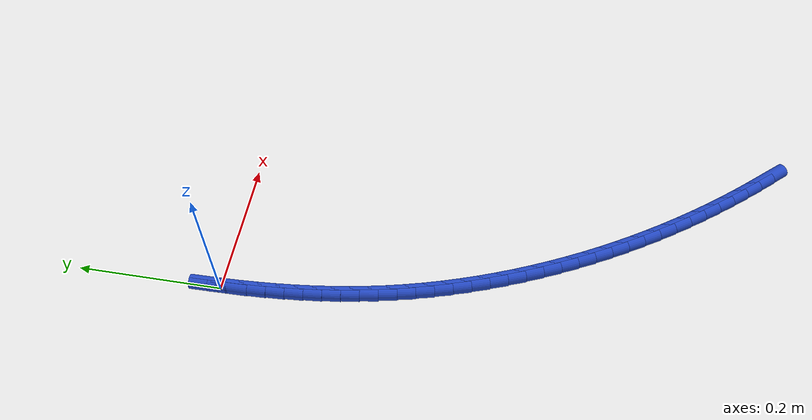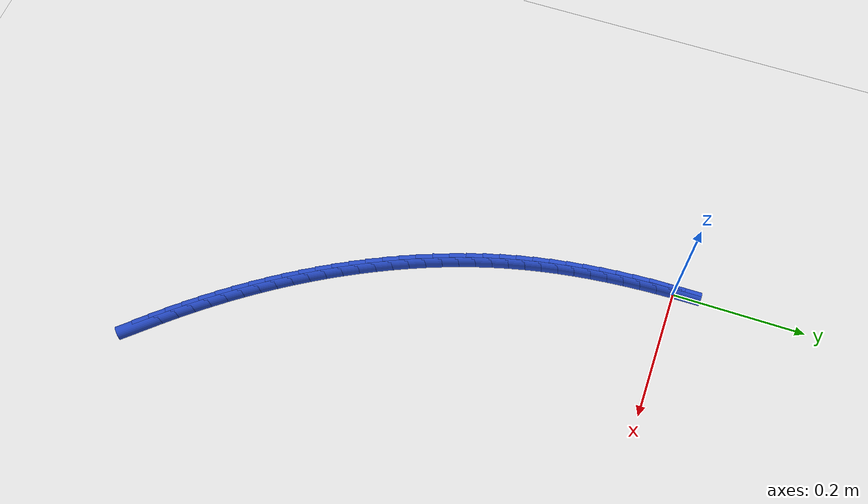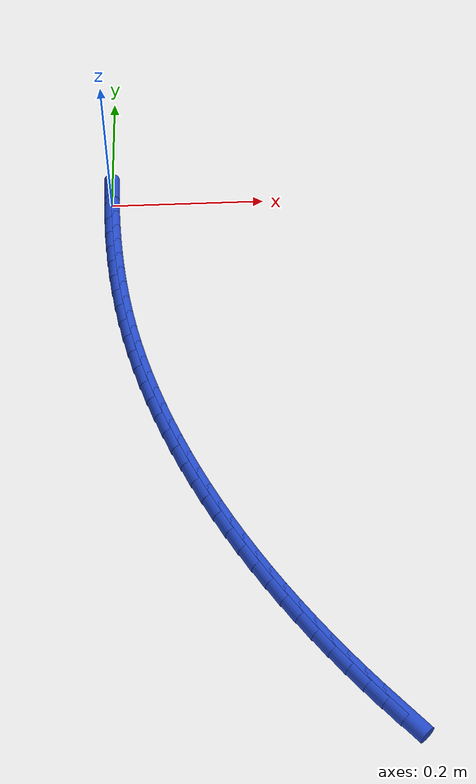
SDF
<sdf version="1.6">
 <world name="default">
  <model name="ground_plane">
   <static>1</static>
   <link name="link">
    <collision name="collision">
     <geometry><plane><normal>0 0 1</normal><size>100 100</size></plane></geometry>
     <surface><friction><ode><mu>100</mu><mu2>50</mu2></ode></friction></surface>
    </collision>
    <visual name="visual">
     <cast_shadows>0</cast_shadows>
     <geometry><plane><normal>0 0 1</normal><size>100 100</size></plane></geometry>
     <material>
      <script><uri>file://media/materials/scripts/gazebo.material</uri><name>Gazebo/WhiteGlow</name></script>
     </material>
    </visual>
   </link>
  </model>
  <model name="line">
   <link name="link_0">
    <pose>-9.75781955236954e-18 6.938893903907228e-17 0.01 0 1.57 -1.555226522127229</pose>
    <collision name="collision">
     <geometry><cylinder><radius>0.01</radius><length>0.08</length></cylinder></geometry>
    </collision>
    <visual name="visual">
     <material>
      <script><name>Gazebo/Blue</name><uri>file://media/materials/scripts/gazebo.material</uri></script>
     </material>
     <geometry><cylinder><radius>0.01</radius><length>0.08</length></cylinder></geometry>
    </visual>
   </link>
   <link name="link_238">
    <pose>0.2973813920303212 -0.7247848915301203 0.01 0 1.57 -0.8393260078516215</pose>
    <collision name="collision">
     <geometry><cylinder><radius>0.01</radius><length>0.08</length></cylinder></geometry>
    </collision>
    <visual name="visual">
     <material>
      <script><name>Gazebo/Blue</name><uri>file://media/materials/scripts/gazebo.material</uri></script>
     </material>
     <geometry><cylinder><radius>0.01</radius><length>0.08</length></cylinder></geometry>
    </visual>
   </link>
   <link name="link_239">
    <pose>0.28057521299253757 -0.7060607809490141 0.01 0 1.57 -0.858616660338777</pose>
    <collision name="collision">
     <geometry><cylinder><radius>0.01</radius><length>0.08</length></cylinder></geometry>
    </collision>
    <visual name="visual">
     <material>
      <script><name>Gazebo/Blue</name><uri>file://media/materials/scripts/gazebo.material</uri></script>
     </material>
     <geometry><cylinder><radius>0.01</radius><length>0.08</length></cylinder></geometry>
    </visual>
   </link>
   <link name="link_240">
    <pose>0.26414512234082027 -0.687029621108753 0.01 0 1.57 -0.8781626858888982</pose>
    <collision name="collision">
     <geometry><cylinder><radius>0.01</radius><length>0.08</length></cylinder></geometry>
    </collision>
    <visual name="visual">
     <material>
      <script><name>Gazebo/Blue</name><uri>file://media/materials/scripts/gazebo.material</uri></script>
     </material>
     <geometry><cylinder><radius>0.01</radius><length>0.08</length></cylinder></geometry>
    </visual>
   </link>
   <link name="link_241">
    <pose>0.24810123595166655 -0.6676943583787607 0.01 0 1.57 -0.8979701749750285</pose>
    <collision name="collision">
     <geometry><cylinder><radius>0.01</radius><length>0.08</length></cylinder></geometry>
    </collision>
    <visual name="visual">
     <material>
      <script><name>Gazebo/Blue</name><uri>file://media/materials/scripts/gazebo.material</uri></script>
     </material>
     <geometry><cylinder><radius>0.01</radius><length>0.08</length></cylinder></geometry>
    </visual>
   </link>
   <link name="link_242">
    <pose>0.23245366970157214 -0.6480579391284592 0.01 0 1.57 -0.9180446044612345</pose>
    <collision name="collision">
     <geometry><cylinder><radius>0.01</radius><length>0.08</length></cylinder></geometry>
    </collision>
    <visual name="visual">
     <material>
      <script><name>Gazebo/Blue</name><uri>file://media/materials/scripts/gazebo.material</uri></script>
     </material>
     <geometry><cylinder><radius>0.01</radius><length>0.08</length></cylinder></geometry>
    </visual>
   </link>
   <link name="link_243">
    <pose>0.21721253946703425 -0.6281233097272727 0.01 0 1.57 -0.9383907788788322</pose>
    <collision name="collision">
     <geometry><cylinder><radius>0.01</radius><length>0.08</length></cylinder></geometry>
    </collision>
    <visual name="visual">
     <material>
      <script><name>Gazebo/Blue</name><uri>file://media/materials/scripts/gazebo.material</uri></script>
     </material>
     <geometry><cylinder><radius>0.01</radius><length>0.08</length></cylinder></geometry>
    </visual>
   </link>
   <link name="link_244">
    <pose>0.20238796112454838 -0.6078934165446227 0.01 0 1.57 -0.9590127691209801</pose>
    <collision name="collision">
     <geometry><cylinder><radius>0.01</radius><length>0.08</length></cylinder></geometry>
    </collision>
    <visual name="visual">
     <material>
      <script><name>Gazebo/Blue</name><uri>file://media/materials/scripts/gazebo.material</uri></script>
     </material>
     <geometry><cylinder><radius>0.01</radius><length>0.08</length></cylinder></geometry>
    </visual>
   </link>
   <link name="link_245">
    <pose>0.18799005055061185 -0.5873712059499336 0.01 0 1.57 -0.9799138490127053</pose>
    <collision name="collision">
     <geometry><cylinder><radius>0.01</radius><length>0.08</length></cylinder></geometry>
    </collision>
    <visual name="visual">
     <material>
      <script><name>Gazebo/Blue</name><uri>file://media/materials/scripts/gazebo.material</uri></script>
     </material>
     <geometry><cylinder><radius>0.01</radius><length>0.08</length></cylinder></geometry>
    </visual>
   </link>
   <link name="link_246">
    <pose>0.17402892362172068 -0.5665596243126277 0.01 0 1.57 -1.0010964303188092</pose>
    <collision name="collision">
     <geometry><cylinder><radius>0.01</radius><length>0.08</length></cylinder></geometry>
    </collision>
    <visual name="visual">
     <material>
      <script><name>Gazebo/Blue</name><uri>file://media/materials/scripts/gazebo.material</uri></script>
     </material>
     <geometry><cylinder><radius>0.01</radius><length>0.08</length></cylinder></geometry>
    </visual>
   </link>
   <link name="link_247">
    <pose>0.16051469621437084 -0.5454616180021274 0.01 0 1.57 -1.0225619968642814</pose>
    <collision name="collision">
     <geometry><cylinder><radius>0.01</radius><length>0.08</length></cylinder></geometry>
    </collision>
    <visual name="visual">
     <material>
      <script><name>Gazebo/Blue</name><uri>file://media/materials/scripts/gazebo.material</uri></script>
     </material>
     <geometry><cylinder><radius>0.01</radius><length>0.08</length></cylinder></geometry>
    </visual>
   </link>
   <link name="link_248">
    <pose>0.1474574842050596 -0.524080133387857 0.01 0 1.57 -1.044311038557696</pose>
    <collision name="collision">
     <geometry><cylinder><radius>0.01</radius><length>0.08</length></cylinder></geometry>
    </collision>
    <visual name="visual">
     <material>
      <script><name>Gazebo/Blue</name><uri>file://media/materials/scripts/gazebo.material</uri></script>
     </material>
     <geometry><cylinder><radius>0.01</radius><length>0.08</length></cylinder></geometry>
    </visual>
   </link>
   <link name="link_249">
    <pose>0.13486740347028267 -0.5024181168392379 0.01 0 1.57 -1.0663429862256706</pose>
    <collision name="collision">
     <geometry><cylinder><radius>0.01</radius><length>0.08</length></cylinder></geometry>
    </collision>
    <visual name="visual">
     <material>
      <script><name>Gazebo/Blue</name><uri>file://media/materials/scripts/gazebo.material</uri></script>
     </material>
     <geometry><cylinder><radius>0.01</radius><length>0.08</length></cylinder></geometry>
    </visual>
   </link>
   <link name="link_250">
    <pose>0.12275456988653714 -0.4804785147256947 0.01 0 1.57 -1.088656148281805</pose>
    <collision name="collision">
     <geometry><cylinder><radius>0.01</radius><length>0.08</length></cylinder></geometry>
    </collision>
    <visual name="visual">
     <material>
      <script><name>Gazebo/Blue</name><uri>file://media/materials/scripts/gazebo.material</uri></script>
     </material>
     <geometry><cylinder><radius>0.01</radius><length>0.08</length></cylinder></geometry>
    </visual>
   </link>
   <link name="link_251">
    <pose>0.11112909933031868 -0.45826427341664877 0.01 0 1.57 -1.111251507098401</pose>
    <collision name="collision">
     <geometry><cylinder><radius>0.01</radius><length>0.08</length></cylinder></geometry>
    </collision>
    <visual name="visual">
     <material>
      <script><name>Gazebo/Blue</name><uri>file://media/materials/scripts/gazebo.material</uri></script>
     </material>
     <geometry><cylinder><radius>0.01</radius><length>0.08</length></cylinder></geometry>
    </visual>
   </link>
   <link name="link_252">
    <pose>0.10000142555041797 -0.435778763444819 0.01 0 1.57 -1.1341972455989866</pose>
    <collision name="collision">
     <geometry><cylinder><radius>0.01</radius><length>0.08</length></cylinder></geometry>
    </collision>
    <visual name="visual">
     <material>
      <script><name>Gazebo/Blue</name><uri>file://media/materials/scripts/gazebo.material</uri></script>
     </material>
     <geometry><cylinder><radius>0.01</radius><length>0.08</length></cylinder></geometry>
    </visual>
   </link>
   <link name="link_253">
    <pose>0.08938718763365006 -0.41303230125601453 0.01 0 1.57 -1.157577042843663</pose>
    <collision name="collision">
     <geometry><cylinder><radius>0.01</radius><length>0.08</length></cylinder></geometry>
    </collision>
    <visual name="visual">
     <material>
      <script><name>Gazebo/Blue</name><uri>file://media/materials/scripts/gazebo.material</uri></script>
     </material>
     <geometry><cylinder><radius>0.01</radius><length>0.08</length></cylinder></geometry>
    </visual>
   </link>
   <link name="link_254">
    <pose>0.07930627458175796 -0.3900408743090708 0.01 0 1.57 -1.181430829397518</pose>
    <collision name="collision">
     <geometry><cylinder><radius>0.01</radius><length>0.08</length></cylinder></geometry>
    </collision>
    <visual name="visual">
     <material>
      <script><name>Gazebo/Blue</name><uri>file://media/materials/scripts/gazebo.material</uri></script>
     </material>
     <geometry><cylinder><radius>0.01</radius><length>0.08</length></cylinder></geometry>
    </visual>
   </link>
   <link name="link_255">
    <pose>0.06977869971754265 -0.36682063595469283 0.01 0 1.57 -1.2057964481399792</pose>
    <collision name="collision">
     <geometry><cylinder><radius>0.01</radius><length>0.08</length></cylinder></geometry>
    </collision>
    <visual name="visual">
     <material>
      <script><name>Gazebo/Blue</name><uri>file://media/materials/scripts/gazebo.material</uri></script>
     </material>
     <geometry><cylinder><radius>0.01</radius><length>0.08</length></cylinder></geometry>
    </visual>
   </link>
   <link name="link_256">
    <pose>0.06082447636380641 -0.34338773954358887 0.01 0 1.57 -1.2307110240519366</pose>
    <collision name="collision">
     <geometry><cylinder><radius>0.01</radius><length>0.08</length></cylinder></geometry>
    </collision>
    <visual name="visual">
     <material>
      <script><name>Gazebo/Blue</name><uri>file://media/materials/scripts/gazebo.material</uri></script>
     </material>
     <geometry><cylinder><radius>0.01</radius><length>0.08</length></cylinder></geometry>
    </visual>
   </link>
   <link name="link_257">
    <pose>0.052463617843350595 -0.3197583384264646 0.01 0 1.57 -1.2562107767556168</pose>
    <collision name="collision">
     <geometry><cylinder><radius>0.01</radius><length>0.08</length></cylinder></geometry>
    </collision>
    <visual name="visual">
     <material>
      <script><name>Gazebo/Blue</name><uri>file://media/materials/scripts/gazebo.material</uri></script>
     </material>
     <geometry><cylinder><radius>0.01</radius><length>0.08</length></cylinder></geometry>
    </visual>
   </link>
   <link name="link_258">
    <pose>0.04471613747897663 -0.2959485859540262 0.01 0 1.57 -1.2823307800120611</pose>
    <collision name="collision">
     <geometry><cylinder><radius>0.01</radius><length>0.08</length></cylinder></geometry>
    </collision>
    <visual name="visual">
     <material>
      <script><name>Gazebo/Blue</name><uri>file://media/materials/scripts/gazebo.material</uri></script>
     </material>
     <geometry><cylinder><radius>0.01</radius><length>0.08</length></cylinder></geometry>
    </visual>
   </link>
   <link name="link_259">
    <pose>0.037602048593486655 -0.27197463547698153 0.01 0 1.57 -1.3091046641077866</pose>
    <collision name="collision">
     <geometry><cylinder><radius>0.01</radius><length>0.08</length></cylinder></geometry>
    </collision>
    <visual name="visual">
     <material>
      <script><name>Gazebo/Blue</name><uri>file://media/materials/scripts/gazebo.material</uri></script>
     </material>
     <geometry><cylinder><radius>0.01</radius><length>0.08</length></cylinder></geometry>
    </visual>
   </link>
   <link name="link_260">
    <pose>0.031141364509681906 -0.24785264034603585 0.01 0 1.57 -1.3365567693281977</pose>
    <collision name="collision">
     <geometry><cylinder><radius>0.01</radius><length>0.08</length></cylinder></geometry>
    </collision>
    <visual name="visual">
     <material>
      <script><name>Gazebo/Blue</name><uri>file://media/materials/scripts/gazebo.material</uri></script>
     </material>
     <geometry><cylinder><radius>0.01</radius><length>0.08</length></cylinder></geometry>
    </visual>
   </link>
   <link name="link_261">
    <pose>0.025353891932955935 -0.22359869248104544 0.01 0 1.57 -1.3640699351846055</pose>
    <collision name="collision">
     <geometry><cylinder><radius>0.01</radius><length>0.08</length></cylinder></geometry>
    </collision>
    <visual name="visual">
     <material>
      <script><name>Gazebo/Blue</name><uri>file://media/materials/scripts/gazebo.material</uri></script>
     </material>
     <geometry><cylinder><radius>0.01</radius><length>0.08</length></cylinder></geometry>
    </visual>
   </link>
   <link name="link_262">
    <pose>0.020241901507732665 -0.19922367003419197 0.01 0 1.57 -1.3904938499295976</pose>
    <collision name="collision">
     <geometry><cylinder><radius>0.01</radius><length>0.08</length></cylinder></geometry>
    </collision>
    <visual name="visual">
     <material>
      <script><name>Gazebo/Blue</name><uri>file://media/materials/scripts/gazebo.material</uri></script>
     </material>
     <geometry><cylinder><radius>0.01</radius><length>0.08</length></cylinder></geometry>
    </visual>
   </link>
   <link name="link_263">
    <pose>0.015777025417665354 -0.174729341824809 0.01 0 1.57 -1.41566204428472</pose>
    <collision name="collision">
     <geometry><cylinder><radius>0.01</radius><length>0.08</length></cylinder></geometry>
    </collision>
    <visual name="visual">
     <material>
      <script><name>Gazebo/Blue</name><uri>file://media/materials/scripts/gazebo.material</uri></script>
     </material>
     <geometry><cylinder><radius>0.01</radius><length>0.08</length></cylinder></geometry>
    </visual>
   </link>
   <link name="link_264">
    <pose>0.01192781016071139 -0.15011655924565345 0.01 0 1.57 -1.439531338143525</pose>
    <collision name="collision">
     <geometry><cylinder><radius>0.01</radius><length>0.08</length></cylinder></geometry>
    </collision>
    <visual name="visual">
     <material>
      <script><name>Gazebo/Blue</name><uri>file://media/materials/scripts/gazebo.material</uri></script>
     </material>
     <geometry><cylinder><radius>0.01</radius><length>0.08</length></cylinder></geometry>
    </visual>
   </link>
   <link name="link_265">
    <pose>0.00866280223482867 -0.12538617368948557 0.01 0 1.57 -1.462069195327008</pose>
    <collision name="collision">
     <geometry><cylinder><radius>0.01</radius><length>0.08</length></cylinder></geometry>
    </collision>
    <visual name="visual">
     <material>
      <script><name>Gazebo/Blue</name><uri>file://media/materials/scripts/gazebo.material</uri></script>
     </material>
     <geometry><cylinder><radius>0.01</radius><length>0.08</length></cylinder></geometry>
    </visual>
   </link>
   <link name="link_266">
    <pose>0.005950548137974655 -0.10053903654906236 0.01 0 1.57 -1.483252739436537</pose>
    <collision name="collision">
     <geometry><cylinder><radius>0.01</radius><length>0.08</length></cylinder></geometry>
    </collision>
    <visual name="visual">
     <material>
      <script><name>Gazebo/Blue</name><uri>file://media/materials/scripts/gazebo.material</uri></script>
     </material>
     <geometry><cylinder><radius>0.01</radius><length>0.08</length></cylinder></geometry>
    </visual>
   </link>
   <link name="link_267">
    <pose>0.0037595943681071713 -0.07557599921714413 0.01 0 1.57 -1.5030676711503643</pose>
    <collision name="collision">
     <geometry><cylinder><radius>0.01</radius><length>0.08</length></cylinder></geometry>
    </collision>
    <visual name="visual">
     <material>
      <script><name>Gazebo/Blue</name><uri>file://media/materials/scripts/gazebo.material</uri></script>
     </material>
     <geometry><cylinder><radius>0.01</radius><length>0.08</length></cylinder></geometry>
    </visual>
   </link>
   <link name="link_268">
    <pose>0.002058487423183794 -0.05049791308648864 0.01 0 1.57 -1.5215071427519653</pose>
    <collision name="collision">
     <geometry><cylinder><radius>0.01</radius><length>0.08</length></cylinder></geometry>
    </collision>
    <visual name="visual">
     <material>
      <script><name>Gazebo/Blue</name><uri>file://media/materials/scripts/gazebo.material</uri></script>
     </material>
     <geometry><cylinder><radius>0.01</radius><length>0.08</length></cylinder></geometry>
    </visual>
   </link>
   <link name="link_269">
    <pose>0.0008157738011621525 -0.025305629549853798 0.01 0 1.57 -1.5385706361584455</pose>
    <collision name="collision">
     <geometry><cylinder><radius>0.01</radius><length>0.08</length></cylinder></geometry>
    </collision>
    <visual name="visual">
     <material>
      <script><name>Gazebo/Blue</name><uri>file://media/materials/scripts/gazebo.material</uri></script>
     </material>
     <geometry><cylinder><radius>0.01</radius><length>0.08</length></cylinder></geometry>
    </visual>
   </link>
   <link name="link_270">
    <pose>-1.7780915628762273e-17 2.220446049250313e-16 0.01 0 1.57 -1.554262880701125</pose>
    <collision name="collision">
     <geometry><cylinder><radius>0.01</radius><length>0.08</length></cylinder></geometry>
    </collision>
    <visual name="visual">
     <material>
      <script><name>Gazebo/Blue</name><uri>file://media/materials/scripts/gazebo.material</uri></script>
     </material>
     <geometry><cylinder><radius>0.01</radius><length>0.08</length></cylinder></geometry>
    </visual>
   </link>
  </model>
 </world>
</sdf>
